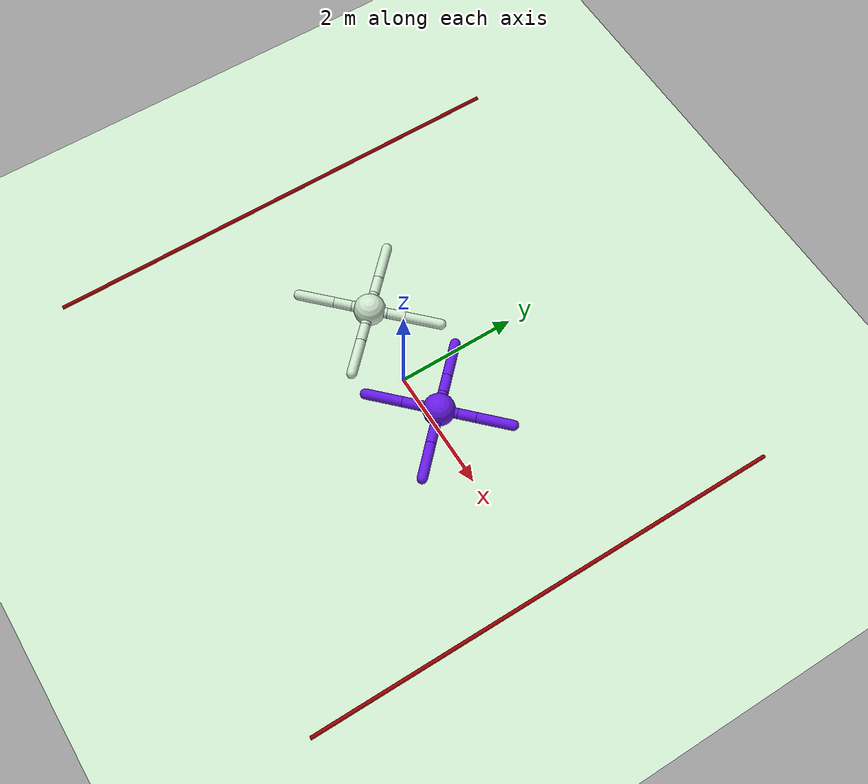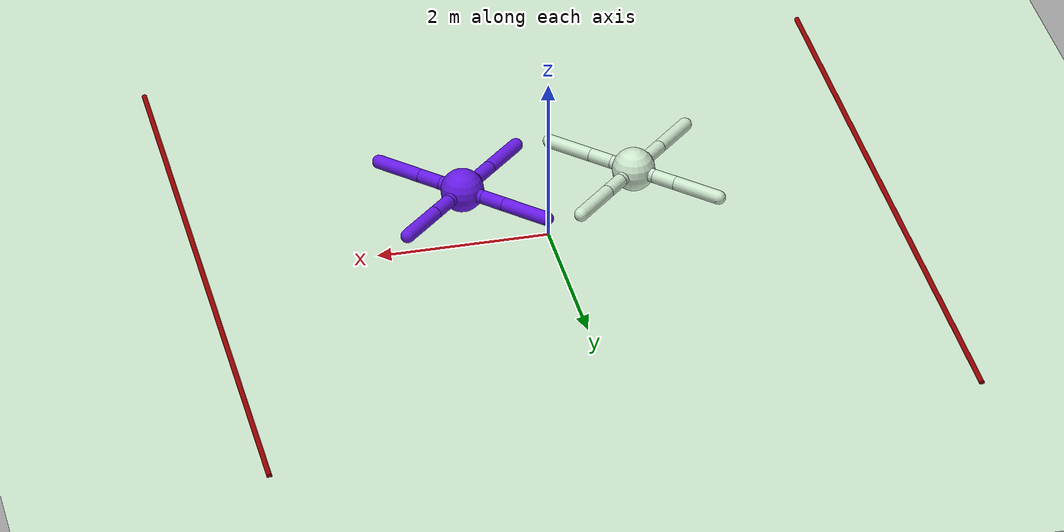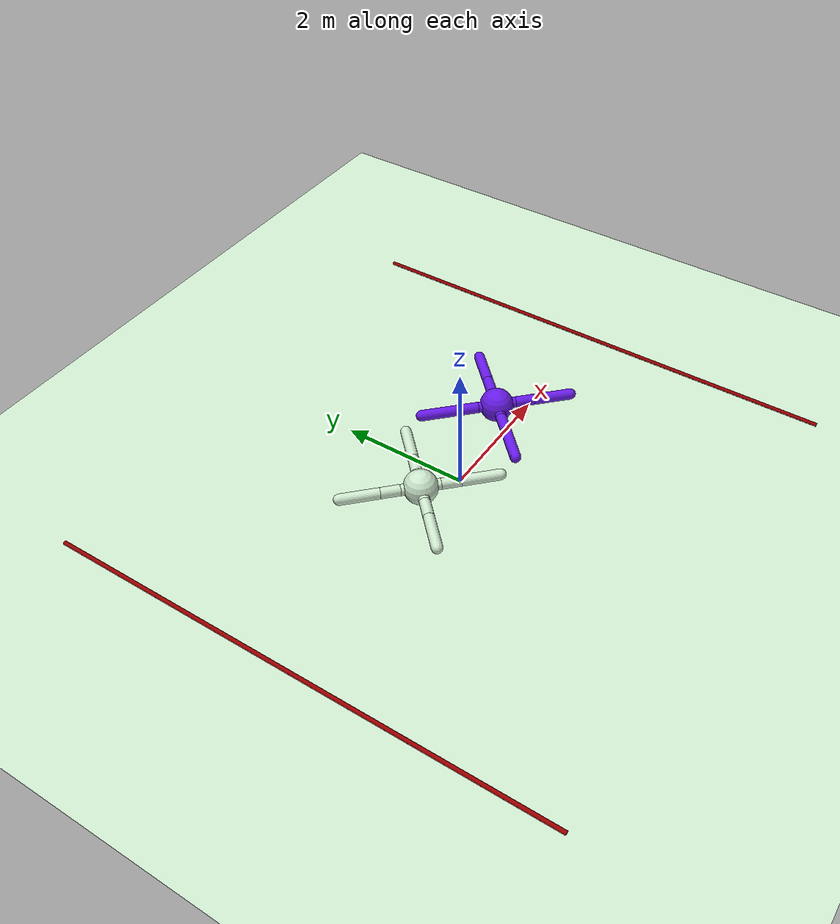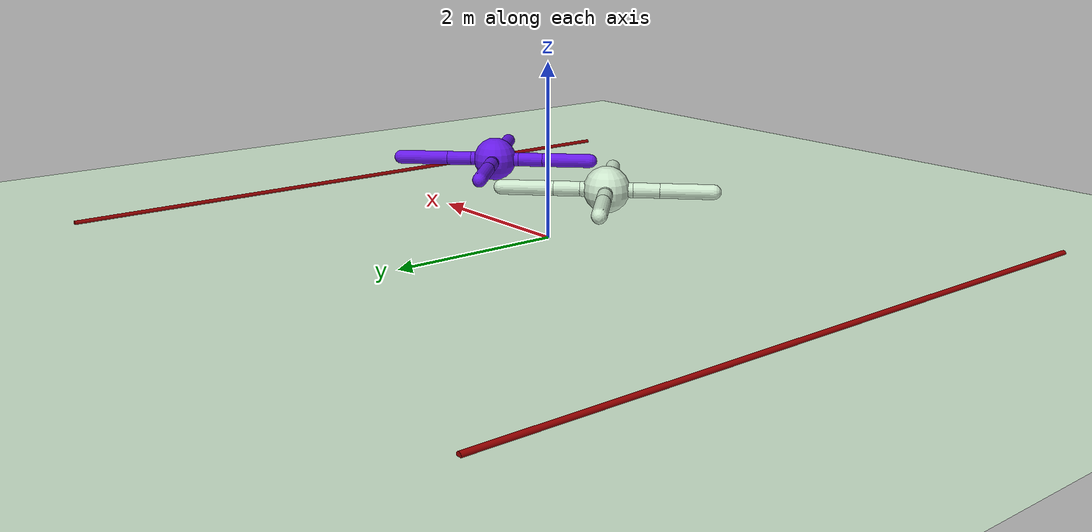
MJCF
<mujoco model="newant">
  <compiler angle="degree" coordinate="local" inertiafromgeom="true"/>
  <option integrator="RK4" timestep="0.01" iterations="1000"/>
  <custom>
    <numeric data="-1.0 0.0 0.55 1.0 0.0 0.0 0.0 0.0 1.0 0.0 -1.0 0.0 -1.0 0.0 1.0 1.0 0.0 0.55 1.0 0.0 0.0 0.0 0.0 1.0 0.0 -1.0 0.0 -1.0 0.0 1.0" name="init_qpos"/>
  </custom>
  <default>
    <joint armature="1" damping="1" limited="true"/>
    <geom condim="3" density="5.0" friction="1 0.5 0.5" margin="0.01"/>
    <default class="ant1">
        <geom contype="1" conaffinity="2" rgba="0.8 0.6 0.4 1"/>
    </default>
    <default class="ant2">
        <geom contype="2" conaffinity="1" rgba="0.4 0.1 0.9 1"/>
    </default>
  </default>
  <asset>
    <texture builtin="gradient" height="100" rgb1="1 1 1" rgb2="0 0 0" type="skybox" width="100"/>
    <texture builtin="flat" height="1278" mark="cross" markrgb="1 1 1" name="texgeom" random="0.01" rgb1="0.8 0.6 0.4" rgb2="0.8 0.6 0.4" type="cube" width="127"/>
    <texture builtin="checker" height="100" name="texplane" rgb1="0 0 0" rgb2="0.8 0.8 0.8" type="2d" width="100"/>
    <material name="MatPlane" reflectance="0.5" shininess="1" specular="1" texrepeat="60 60" texture="texplane"/>
    <material name="geom" texture="texgeom" texuniform="true"/>
  </asset>
  <worldbody>
    <light cutoff="100" diffuse="1 1 1" dir="-0 0 -1.3" directional="true" exponent="1" pos="0 0 1.3" specular=".1 .1 .1"/>
    <geom contype="3" conaffinity="3" condim="3" material="MatPlane" name="floor" pos="0 0 0" rgba="0.8 0.9 0.8 1" size="40 40 40" type="plane"/>
    <!-- Beggining of targets for the agents, change this to modify goal distance -->
    <geom fromto="4 -4 0  4 +4 0" name="player1goal" rgba="0.6 0.0 0.0 1" size=".03" type="cylinder"/>
    <geom fromto="-4 -4 0  -4 +4 0" name="player2goal" rgba="0.6 0.0 0.0 1" size=".03" type="cylinder"/>
    <!-- End of target  -->
    <body name="torso" pos="-1 0 0.75">
      <geom class="ant1" name="torso_geom" pos="0 0 0" size="0.25" rgba="0.8 0.9 0.8 1" type="sphere"/>
      <joint armature="0" damping="0" limited="false" margin="0.01" name="root" pos="0 0 0" range="-30 30" type="free"/>
      <body name="front_left_leg" pos="0 0 0">
        <geom class="ant1" fromto="0.0 0.0 0.0 0.2 0.2 0.0" name="aux_1_geom" rgba="0.8 0.9 0.8 1" size="0.08" type="capsule"/>
        <body name="aux_1" pos="0.2 0.2 0">
          <joint axis="0 0 1" name="hip_1" pos="0.0 0.0 0.0" range="-30 30" type="hinge"/>
          <geom class="ant1" fromto="0.0 0.0 0.0 0.2 0.2 0.0" name="left_leg_geom" rgba="0.8 0.9 0.8 1" size="0.08" type="capsule"/>
          <body pos="0.2 0.2 0">
            <joint axis="-1 1 0" name="ankle_1" pos="0.0 0.0 0.0" range="30 70" type="hinge"/>
            <geom class="ant1" fromto="0.0 0.0 0.0 0.4 0.4 0.0" name="left_ankle_geom" rgba="0.8 0.9 0.8 1" size="0.08" type="capsule"/>
          </body>
        </body>
      </body>
      <body name="front_right_leg" pos="0 0 0">
        <geom class="ant1" fromto="0.0 0.0 0.0 -0.2 0.2 0.0" name="aux_2_geom" rgba="0.8 0.9 0.8 1" size="0.08" type="capsule"/>
        <body name="aux_2" pos="-0.2 0.2 0">
          <joint axis="0 0 1" name="hip_2" pos="0.0 0.0 0.0" range="-30 30" type="hinge"/>
          <geom class="ant1" fromto="0.0 0.0 0.0 -0.2 0.2 0.0" name="right_leg_geom" rgba="0.8 0.9 0.8 1" size="0.08" type="capsule"/>
          <body pos="-0.2 0.2 0">
            <joint axis="1 1 0" name="ankle_2" pos="0.0 0.0 0.0" range="-70 -30" type="hinge"/>
            <geom class="ant1" fromto="0.0 0.0 0.0 -0.4 0.4 0.0" name="right_ankle_geom" rgba="0.8 0.9 0.8 1" size="0.08" type="capsule"/>
          </body>
        </body>
      </body>
      <body name="back_leg" pos="0 0 0">
        <geom class="ant1" fromto="0.0 0.0 0.0 -0.2 -0.2 0.0" name="aux_3_geom" rgba="0.8 0.9 0.8 1" size="0.08" type="capsule"/>
        <body name="aux_3" pos="-0.2 -0.2 0">
          <joint axis="0 0 1" name="hip_3" pos="0.0 0.0 0.0" range="-30 30" type="hinge"/>
          <geom class="ant1" fromto="0.0 0.0 0.0 -0.2 -0.2 0.0" name="back_leg_geom" rgba="0.8 0.9 0.8 1" size="0.08" type="capsule"/>
          <body pos="-0.2 -0.2 0">
            <joint axis="-1 1 0" name="ankle_3" pos="0.0 0.0 0.0" range="-70 -30" type="hinge"/>
            <geom class="ant1" fromto="0.0 0.0 0.0 -0.4 -0.4 0.0" name="third_ankle_geom" rgba="0.8 0.9 0.8 1" size="0.08" type="capsule"/>
          </body>
        </body>
      </body>
      <body name="right_back_leg" pos="0 0 0">
        <geom class="ant1" fromto="0.0 0.0 0.0 0.2 -0.2 0.0" name="aux_4_geom" rgba="0.8 0.9 0.8 1" size="0.08" type="capsule"/>
        <body name="aux_4" pos="0.2 -0.2 0">
          <joint axis="0 0 1" name="hip_4" pos="0.0 0.0 0.0" range="-30 30" type="hinge"/>
          <geom class="ant1" fromto="0.0 0.0 0.0 0.2 -0.2 0.0" name="rightback_leg_geom" rgba="0.8 0.9 0.8 1" size="0.08" type="capsule"/>
          <body pos="0.2 -0.2 0">
            <joint axis="1 1 0" name="ankle_4" pos="0.0 0.0 0.0" range="30 70" type="hinge"/>
            <geom class="ant1" fromto="0.0 0.0 0.0 0.4 -0.4 0.0" name="fourth_ankle_geom" rgba="0.8 0.9 0.8 1" size="0.08" type="capsule"/>
          </body>
        </body>
      </body>
    </body>

    <body name="torso2" pos="1 0 0.75">
      <geom class="ant2" name="torso_geom2" pos="0 0 0" size="0.25" type="sphere"/>
      <joint armature="0" damping="0" limited="false" margin="0.01" name="root2" pos="0 0 0" range="-30 30" type="free"/>
      <body name="front_left_leg2" pos="0 0 0">
        <geom class="ant2" fromto="0.0 0.0 0.0 0.2 0.2 0.0" name="aux_1_geom2" size="0.08" type="capsule"/>
        <body name="aux_1_2" pos="0.2 0.2 0">
          <joint axis="0 0 1" name="hip_1_2" pos="0.0 0.0 0.0" range="-30 30" type="hinge"/>
          <geom class="ant2" fromto="0.0 0.0 0.0 0.2 0.2 0.0" name="left_leg_geom2" size="0.08" type="capsule"/>
          <body pos="0.2 0.2 0">
            <joint axis="-1 1 0" name="ankle_1_2" pos="0.0 0.0 0.0" range="30 70" type="hinge"/>
            <geom class="ant2" fromto="0.0 0.0 0.0 0.4 0.4 0.0" name="left_ankle_geom2" size="0.08" type="capsule"/>
          </body>
        </body>
      </body>
      <body name="front_right_leg2" pos="0 0 0">
        <geom class="ant2" fromto="0.0 0.0 0.0 -0.2 0.2 0.0" name="aux_2_geom2" size="0.08" type="capsule"/>
        <body name="aux_2_2" pos="-0.2 0.2 0">
          <joint axis="0 0 1" name="hip_2_2" pos="0.0 0.0 0.0" range="-30 30" type="hinge"/>
          <geom class="ant2" fromto="0.0 0.0 0.0 -0.2 0.2 0.0" name="right_leg_geom2" size="0.08" type="capsule"/>
          <body pos="-0.2 0.2 0">
            <joint axis="1 1 0" name="ankle_2_2" pos="0.0 0.0 0.0" range="-70 -30" type="hinge"/>
            <geom class="ant2" fromto="0.0 0.0 0.0 -0.4 0.4 0.0" name="right_ankle_geom2" size="0.08" type="capsule"/>
          </body>
        </body>
      </body>
      <body name="back_leg2" pos="0 0 0">
        <geom class="ant2" fromto="0.0 0.0 0.0 -0.2 -0.2 0.0" name="aux_3_geom2" size="0.08" type="capsule"/>
        <body name="aux_3_2" pos="-0.2 -0.2 0">
          <joint axis="0 0 1" name="hip_3_2" pos="0.0 0.0 0.0" range="-30 30" type="hinge"/>
          <geom class="ant2" fromto="0.0 0.0 0.0 -0.2 -0.2 0.0" name="back_leg_geom2" size="0.08" type="capsule"/>
          <body pos="-0.2 -0.2 0">
            <joint axis="-1 1 0" name="ankle_3_2" pos="0.0 0.0 0.0" range="-70 -30" type="hinge"/>
            <geom class="ant2" fromto="0.0 0.0 0.0 -0.4 -0.4 0.0" name="third_ankle_geom2" size="0.08" type="capsule"/>
          </body>
        </body>
      </body>
      <body name="right_back_leg2" pos="0 0 0">
        <geom class="ant2" fromto="0.0 0.0 0.0 0.2 -0.2 0.0" name="aux_4_geom2" size="0.08" type="capsule"/>
        <body name="aux_4_2" pos="0.2 -0.2 0">
          <joint axis="0 0 1" name="hip_4_2" pos="0.0 0.0 0.0" range="-30 30" type="hinge"/>
          <geom class="ant2" fromto="0.0 0.0 0.0 0.2 -0.2 0.0" name="rightback_leg_geom_2" size="0.08" type="capsule"/>
          <body pos="0.2 -0.2 0">
            <joint axis="1 1 0" name="ankle_4_2" pos="0.0 0.0 0.0" range="30 70" type="hinge"/>
            <geom class="ant2" fromto="0.0 0.0 0.0 0.4 -0.4 0.0" name="fourth_ankle_geom_2" size="0.08" type="capsule"/>
          </body>
        </body>
      </body>
    </body>
  </worldbody>
  <actuator>
    <motor ctrllimited="true" ctrlrange="-1.0 1.0" joint="hip_4" gear="150"/>
    <motor ctrllimited="true" ctrlrange="-1.0 1.0" joint="ankle_4" gear="150"/>
    <motor ctrllimited="true" ctrlrange="-1.0 1.0" joint="hip_1" gear="150"/>
    <motor ctrllimited="true" ctrlrange="-1.0 1.0" joint="ankle_1" gear="150"/>
    <motor ctrllimited="true" ctrlrange="-1.0 1.0" joint="hip_2" gear="150"/>
    <motor ctrllimited="true" ctrlrange="-1.0 1.0" joint="ankle_2" gear="150"/>
    <motor ctrllimited="true" ctrlrange="-1.0 1.0" joint="hip_3" gear="150"/>
    <motor ctrllimited="true" ctrlrange="-1.0 1.0" joint="ankle_3" gear="150"/>
    <!-- agent2 here -->
    <motor ctrllimited="true" ctrlrange="-1.0 1.0" joint="hip_4_2" gear="150"/>
    <motor ctrllimited="true" ctrlrange="-1.0 1.0" joint="ankle_4_2" gear="150"/>
    <motor ctrllimited="true" ctrlrange="-1.0 1.0" joint="hip_1_2" gear="150"/>
    <motor ctrllimited="true" ctrlrange="-1.0 1.0" joint="ankle_1_2" gear="150"/>
    <motor ctrllimited="true" ctrlrange="-1.0 1.0" joint="hip_2_2" gear="150"/>
    <motor ctrllimited="true" ctrlrange="-1.0 1.0" joint="ankle_2_2" gear="150"/>
    <motor ctrllimited="true" ctrlrange="-1.0 1.0" joint="hip_3_2" gear="150"/>
    <motor ctrllimited="true" ctrlrange="-1.0 1.0" joint="ankle_3_2" gear="150"/>
  </actuator>
</mujoco>
